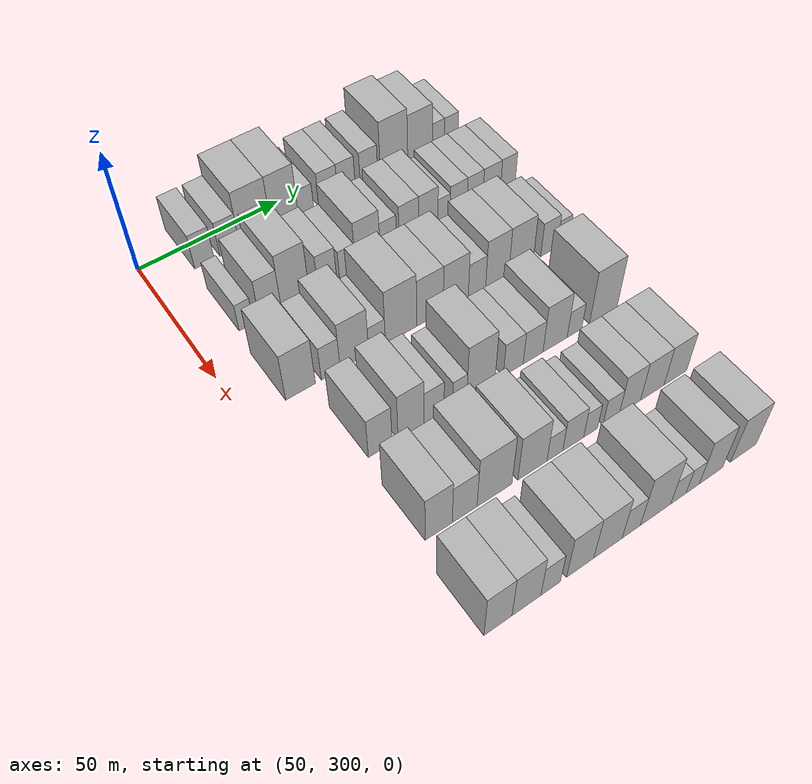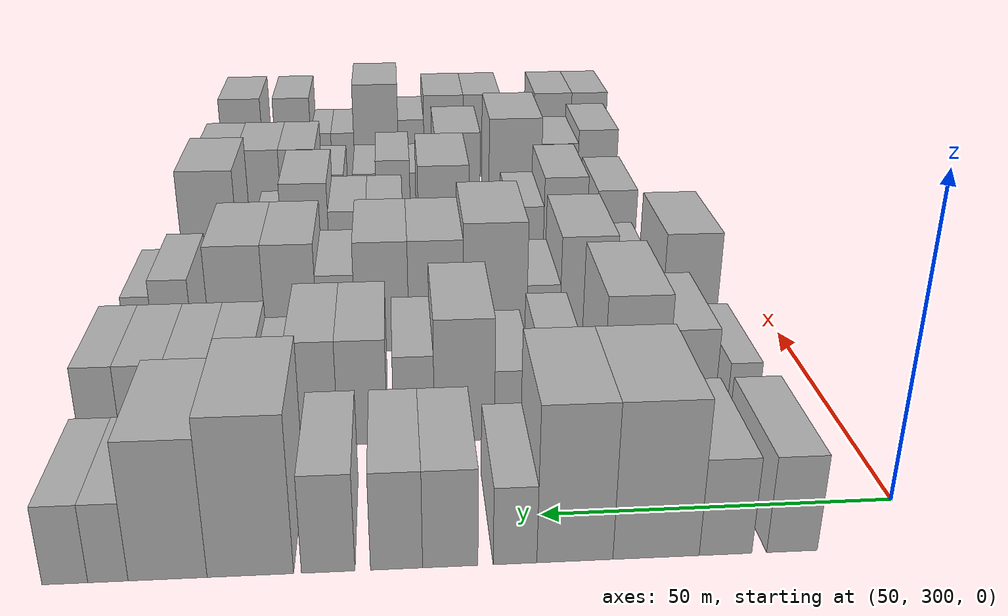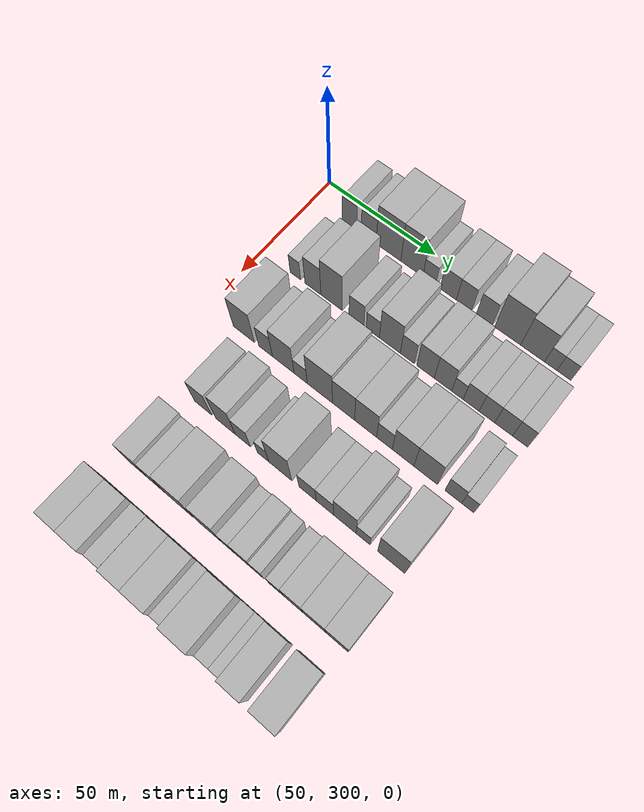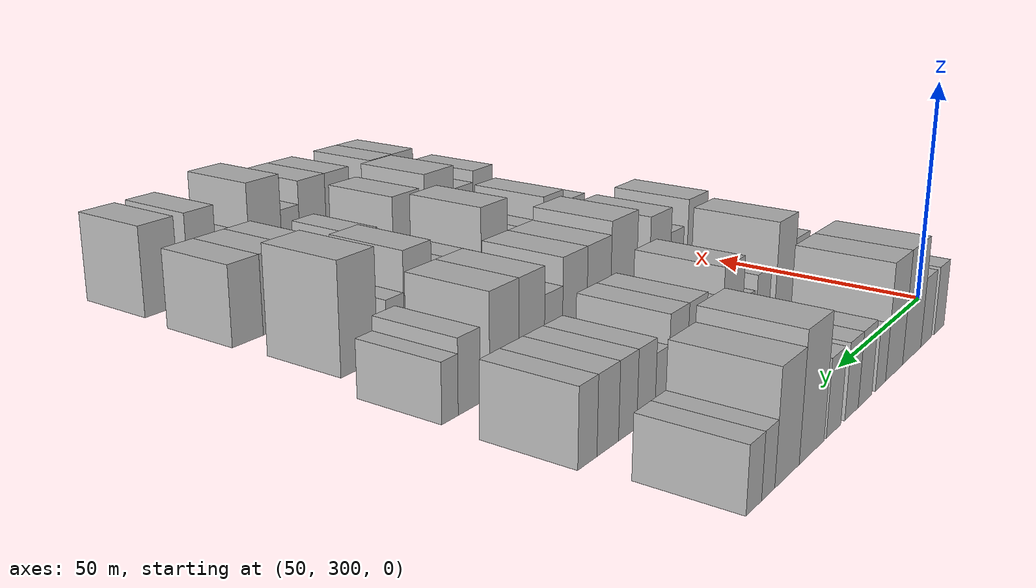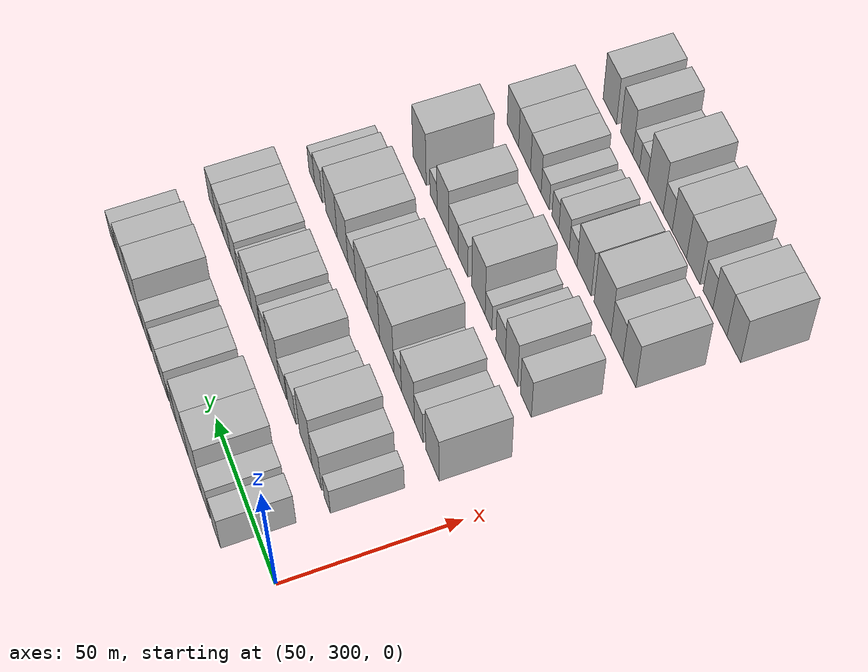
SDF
<sdf version="1.6">
 <world name="default">
  <model name="building_94">
   <static>1</static>
   <pose>50.0000 317.7325 0 0.000000 0.000000 0.000000</pose>
   <link name="link">
    <pose>0 0 7.50 0 0 0</pose>
    <collision name="collision"><geometry><box><size>20.0000 6.8582 15.0000</size></box></geometry></collision>
    <visual name="visual">
     <cast_shadows>0</cast_shadows>
     <geometry><box><size>20.0000 6.8582 15.0000</size></box></geometry>
     <material>
      <script>
       <uri>model://HANNAS_wall/materials/scripts</uri>
       <uri>model://HANNAS_wall/materials/textures</uri>
       <name>vrc/HANNAS_wall</name>
      </script>
     </material>
    </visual>
   </link>
  </model>
  <model name="building_95">
   <static>1</static>
   <pose>50.0000 326.7030 0 0.000000 0.000000 0.000000</pose>
   <link name="link">
    <pose>0 0 7.50 0 0 0</pose>
    <collision name="collision"><geometry><box><size>20.0000 7.0827 15.0000</size></box></geometry></collision>
    <visual name="visual">
     <cast_shadows>0</cast_shadows>
     <geometry><box><size>20.0000 7.0827 15.0000</size></box></geometry>
     <material>
      <script>
       <uri>model://HANNAS_wall/materials/scripts</uri>
       <uri>model://HANNAS_wall/materials/textures</uri>
       <name>vrc/HANNAS_wall</name>
      </script>
     </material>
    </visual>
   </link>
  </model>
  <model name="building_96">
   <static>1</static>
   <pose>50.0000 336.0041 0 0.000000 0.000000 0.000000</pose>
   <link name="link">
    <pose>0 0 12.00 0 0 0</pose>
    <collision name="collision"><geometry><box><size>20.0000 11.5197 24.0000</size></box></geometry></collision>
    <visual name="visual">
     <cast_shadows>0</cast_shadows>
     <geometry><box><size>20.0000 11.5197 24.0000</size></box></geometry>
     <material>
      <script>
       <uri>model://HANNAS_wall/materials/scripts</uri>
       <uri>model://HANNAS_wall/materials/textures</uri>
       <name>vrc/HANNAS_wall</name>
      </script>
     </material>
    </visual>
   </link>
  </model>
  <model name="building_97">
   <static>1</static>
   <pose>50.0000 346.7947 0 0.000000 0.000000 0.000000</pose>
   <link name="link">
    <pose>0 0 12.00 0 0 0</pose>
    <collision name="collision"><geometry><box><size>20.0000 10.0614 24.0000</size></box></geometry></collision>
    <visual name="visual">
     <cast_shadows>0</cast_shadows>
     <geometry><box><size>20.0000 10.0614 24.0000</size></box></geometry>
     <material>
      <script>
       <uri>model://HANNAS_wall/materials/scripts</uri>
       <uri>model://HANNAS_wall/materials/textures</uri>
       <name>vrc/HANNAS_wall</name>
      </script>
     </material>
    </visual>
   </link>
  </model>
  <model name="building_98">
   <static>1</static>
   <pose>50.0000 354.6883 0 0.000000 0.000000 0.000000</pose>
   <link name="link">
    <pose>0 0 6.00 0 0 0</pose>
    <collision name="collision"><geometry><box><size>20.0000 5.7258 12.0000</size></box></geometry></collision>
    <visual name="visual">
     <cast_shadows>0</cast_shadows>
     <geometry><box><size>20.0000 5.7258 12.0000</size></box></geometry>
     <material>
      <script>
       <uri>model://HANNAS_wall/materials/scripts</uri>
       <uri>model://HANNAS_wall/materials/textures</uri>
       <name>vrc/HANNAS_wall</name>
      </script>
     </material>
    </visual>
   </link>
  </model>
  <model name="building_99">
   <static>1</static>
   <pose>50.0000 363.1642 0 0.000000 0.000000 0.000000</pose>
   <link name="link">
    <pose>0 0 7.50 0 0 0</pose>
    <collision name="collision"><geometry><box><size>20.0000 7.2261 15.0000</size></box></geometry></collision>
    <visual name="visual">
     <cast_shadows>0</cast_shadows>
     <geometry><box><size>20.0000 7.2261 15.0000</size></box></geometry>
     <material>
      <script>
       <uri>model://HANNAS_wall/materials/scripts</uri>
       <uri>model://HANNAS_wall/materials/textures</uri>
       <name>vrc/HANNAS_wall</name>
      </script>
     </material>
    </visual>
   </link>
  </model>
  <model name="building_100">
   <static>1</static>
   <pose>50.0000 370.1564 0 0.000000 0.000000 0.000000</pose>
   <link name="link">
    <pose>0 0 7.50 0 0 0</pose>
    <collision name="collision"><geometry><box><size>20.0000 6.7582 15.0000</size></box></geometry></collision>
    <visual name="visual">
     <cast_shadows>0</cast_shadows>
     <geometry><box><size>20.0000 6.7582 15.0000</size></box></geometry>
     <material>
      <script>
       <uri>model://HANNAS_wall/materials/scripts</uri>
       <uri>model://HANNAS_wall/materials/textures</uri>
       <name>vrc/HANNAS_wall</name>
      </script>
     </material>
    </visual>
   </link>
  </model>
  <model name="building_101">
   <static>1</static>
   <pose>50.0000 378.9886 0 0.000000 0.000000 0.000000</pose>
   <link name="link">
    <pose>0 0 7.50 0 0 0</pose>
    <collision name="collision"><geometry><box><size>20.0000 6.9061 15.0000</size></box></geometry></collision>
    <visual name="visual">
     <cast_shadows>0</cast_shadows>
     <geometry><box><size>20.0000 6.9061 15.0000</size></box></geometry>
     <material>
      <script>
       <uri>model://HANNAS_wall/materials/scripts</uri>
       <uri>model://HANNAS_wall/materials/textures</uri>
       <name>vrc/HANNAS_wall</name>
      </script>
     </material>
    </visual>
   </link>
  </model>
  <model name="building_102">
   <static>1</static>
   <pose>50.0000 388.9622 0 0.000000 0.000000 0.000000</pose>
   <link name="link">
    <pose>0 0 12.00 0 0 0</pose>
    <collision name="collision"><geometry><box><size>20.0000 11.0410 24.0000</size></box></geometry></collision>
    <visual name="visual">
     <cast_shadows>0</cast_shadows>
     <geometry><box><size>20.0000 11.0410 24.0000</size></box></geometry>
     <material>
      <script>
       <uri>model://HANNAS_wall/materials/scripts</uri>
       <uri>model://HANNAS_wall/materials/textures</uri>
       <name>vrc/HANNAS_wall</name>
      </script>
     </material>
    </visual>
   </link>
  </model>
  <model name="building_103">
   <static>1</static>
   <pose>50.0000 399.4861 0 0.000000 0.000000 0.000000</pose>
   <link name="link">
    <pose>0 0 10.50 0 0 0</pose>
    <collision name="collision"><geometry><box><size>20.0000 10.0069 21.0000</size></box></geometry></collision>
    <visual name="visual">
     <cast_shadows>0</cast_shadows>
     <geometry><box><size>20.0000 10.0069 21.0000</size></box></geometry>
     <material>
      <script>
       <uri>model://HANNAS_wall/materials/scripts</uri>
       <uri>model://HANNAS_wall/materials/textures</uri>
       <name>vrc/HANNAS_wall</name>
      </script>
     </material>
    </visual>
   </link>
  </model>
  <model name="building_104">
   <static>1</static>
   <pose>50.0000 407.0296 0 0.000000 0.000000 0.000000</pose>
   <link name="link">
    <pose>0 0 6.00 0 0 0</pose>
    <collision name="collision"><geometry><box><size>20.0000 5.0802 12.0000</size></box></geometry></collision>
    <visual name="visual">
     <cast_shadows>0</cast_shadows>
     <geometry><box><size>20.0000 5.0802 12.0000</size></box></geometry>
     <material>
      <script>
       <uri>model://HANNAS_wall/materials/scripts</uri>
       <uri>model://HANNAS_wall/materials/textures</uri>
       <name>vrc/HANNAS_wall</name>
      </script>
     </material>
    </visual>
   </link>
  </model>
  <model name="building_105">
   <static>1</static>
   <pose>50.0000 412.4384 0 0.000000 0.000000 0.000000</pose>
   <link name="link">
    <pose>0 0 6.00 0 0 0</pose>
    <collision name="collision"><geometry><box><size>20.0000 5.7373 12.0000</size></box></geometry></collision>
    <visual name="visual">
     <cast_shadows>0</cast_shadows>
     <geometry><box><size>20.0000 5.7373 12.0000</size></box></geometry>
     <material>
      <script>
       <uri>model://HANNAS_wall/materials/scripts</uri>
       <uri>model://HANNAS_wall/materials/textures</uri>
       <name>vrc/HANNAS_wall</name>
      </script>
     </material>
    </visual>
   </link>
  </model>
  <model name="building_204">
   <static>1</static>
   <pose>79.0000 316.2147 0 0.000000 0.000000 0.000000</pose>
   <link name="link">
    <pose>0 0 6.00 0 0 0</pose>
    <collision name="collision"><geometry><box><size>20.0000 4.9448 12.0000</size></box></geometry></collision>
    <visual name="visual">
     <cast_shadows>0</cast_shadows>
     <geometry><box><size>20.0000 4.9448 12.0000</size></box></geometry>
     <material>
      <script>
       <uri>model://HANNAS_wall/materials/scripts</uri>
       <uri>model://HANNAS_wall/materials/textures</uri>
       <name>vrc/HANNAS_wall</name>
      </script>
     </material>
    </visual>
   </link>
  </model>
  <model name="building_205">
   <static>1</static>
   <pose>79.0000 324.4566 0 0.000000 0.000000 0.000000</pose>
   <link name="link">
    <pose>0 0 9.00 0 0 0</pose>
    <collision name="collision"><geometry><box><size>20.0000 7.5390 18.0000</size></box></geometry></collision>
    <visual name="visual">
     <cast_shadows>0</cast_shadows>
     <geometry><box><size>20.0000 7.5390 18.0000</size></box></geometry>
     <material>
      <script>
       <uri>model://HANNAS_wall/materials/scripts</uri>
       <uri>model://HANNAS_wall/materials/textures</uri>
       <name>vrc/HANNAS_wall</name>
      </script>
     </material>
    </visual>
   </link>
  </model>
  <model name="building_206">
   <static>1</static>
   <pose>79.0000 333.1781 0 0.000000 0.000000 0.000000</pose>
   <link name="link">
    <pose>0 0 12.00 0 0 0</pose>
    <collision name="collision"><geometry><box><size>20.0000 9.9040 24.0000</size></box></geometry></collision>
    <visual name="visual">
     <cast_shadows>0</cast_shadows>
     <geometry><box><size>20.0000 9.9040 24.0000</size></box></geometry>
     <material>
      <script>
       <uri>model://HANNAS_wall/materials/scripts</uri>
       <uri>model://HANNAS_wall/materials/textures</uri>
       <name>vrc/HANNAS_wall</name>
      </script>
     </material>
    </visual>
   </link>
  </model>
  <model name="building_207">
   <static>1</static>
   <pose>79.0000 344.5242 0 0.000000 0.000000 0.000000</pose>
   <link name="link">
    <pose>0 0 7.50 0 0 0</pose>
    <collision name="collision"><geometry><box><size>20.0000 6.7881 15.0000</size></box></geometry></collision>
    <visual name="visual">
     <cast_shadows>0</cast_shadows>
     <geometry><box><size>20.0000 6.7881 15.0000</size></box></geometry>
     <material>
      <script>
       <uri>model://HANNAS_wall/materials/scripts</uri>
       <uri>model://HANNAS_wall/materials/textures</uri>
       <name>vrc/HANNAS_wall</name>
      </script>
     </material>
    </visual>
   </link>
  </model>
  <model name="building_208">
   <static>1</static>
   <pose>79.0000 351.8543 0 0.000000 0.000000 0.000000</pose>
   <link name="link">
    <pose>0 0 6.00 0 0 0</pose>
    <collision name="collision"><geometry><box><size>20.0000 5.8721 12.0000</size></box></geometry></collision>
    <visual name="visual">
     <cast_shadows>0</cast_shadows>
     <geometry><box><size>20.0000 5.8721 12.0000</size></box></geometry>
     <material>
      <script>
       <uri>model://HANNAS_wall/materials/scripts</uri>
       <uri>model://HANNAS_wall/materials/textures</uri>
       <name>vrc/HANNAS_wall</name>
      </script>
     </material>
    </visual>
   </link>
  </model>
  <model name="building_209">
   <static>1</static>
   <pose>79.0000 359.4162 0 0.000000 0.000000 0.000000</pose>
   <link name="link">
    <pose>0 0 10.50 0 0 0</pose>
    <collision name="collision"><geometry><box><size>20.0000 9.2517 21.0000</size></box></geometry></collision>
    <visual name="visual">
     <cast_shadows>0</cast_shadows>
     <geometry><box><size>20.0000 9.2517 21.0000</size></box></geometry>
     <material>
      <script>
       <uri>model://HANNAS_wall/materials/scripts</uri>
       <uri>model://HANNAS_wall/materials/textures</uri>
       <name>vrc/HANNAS_wall</name>
      </script>
     </material>
    </visual>
   </link>
  </model>
  <model name="building_210">
   <static>1</static>
   <pose>79.0000 367.1193 0 0.000000 0.000000 0.000000</pose>
   <link name="link">
    <pose>0 0 7.50 0 0 0</pose>
    <collision name="collision"><geometry><box><size>20.0000 6.1545 15.0000</size></box></geometry></collision>
    <visual name="visual">
     <cast_shadows>0</cast_shadows>
     <geometry><box><size>20.0000 6.1545 15.0000</size></box></geometry>
     <material>
      <script>
       <uri>model://HANNAS_wall/materials/scripts</uri>
       <uri>model://HANNAS_wall/materials/textures</uri>
       <name>vrc/HANNAS_wall</name>
      </script>
     </material>
    </visual>
   </link>
  </model>
  <model name="building_211">
   <static>1</static>
   <pose>79.0000 374.9611 0 0.000000 0.000000 0.000000</pose>
   <link name="link">
    <pose>0 0 9.00 0 0 0</pose>
    <collision name="collision"><geometry><box><size>20.0000 7.5292 18.0000</size></box></geometry></collision>
    <visual name="visual">
     <cast_shadows>0</cast_shadows>
     <geometry><box><size>20.0000 7.5292 18.0000</size></box></geometry>
     <material>
      <script>
       <uri>model://HANNAS_wall/materials/scripts</uri>
       <uri>model://HANNAS_wall/materials/textures</uri>
       <name>vrc/HANNAS_wall</name>
      </script>
     </material>
    </visual>
   </link>
  </model>
  <model name="building_212">
   <static>1</static>
   <pose>79.0000 382.4216 0 0.000000 0.000000 0.000000</pose>
   <link name="link">
    <pose>0 0 9.00 0 0 0</pose>
    <collision name="collision"><geometry><box><size>20.0000 7.3918 18.0000</size></box></geometry></collision>
    <visual name="visual">
     <cast_shadows>0</cast_shadows>
     <geometry><box><size>20.0000 7.3918 18.0000</size></box></geometry>
     <material>
      <script>
       <uri>model://HANNAS_wall/materials/scripts</uri>
       <uri>model://HANNAS_wall/materials/textures</uri>
       <name>vrc/HANNAS_wall</name>
      </script>
     </material>
    </visual>
   </link>
  </model>
  <model name="building_213">
   <static>1</static>
   <pose>79.0000 388.5293 0 0.000000 0.000000 0.000000</pose>
   <link name="link">
    <pose>0 0 6.00 0 0 0</pose>
    <collision name="collision"><geometry><box><size>20.0000 4.8237 12.0000</size></box></geometry></collision>
    <visual name="visual">
     <cast_shadows>0</cast_shadows>
     <geometry><box><size>20.0000 4.8237 12.0000</size></box></geometry>
     <material>
      <script>
       <uri>model://HANNAS_wall/materials/scripts</uri>
       <uri>model://HANNAS_wall/materials/textures</uri>
       <name>vrc/HANNAS_wall</name>
      </script>
     </material>
    </visual>
   </link>
  </model>
  <model name="building_214">
   <static>1</static>
   <pose>79.0000 394.2707 0 0.000000 0.000000 0.000000</pose>
   <link name="link">
    <pose>0 0 7.50 0 0 0</pose>
    <collision name="collision"><geometry><box><size>20.0000 6.6591 15.0000</size></box></geometry></collision>
    <visual name="visual">
     <cast_shadows>0</cast_shadows>
     <geometry><box><size>20.0000 6.6591 15.0000</size></box></geometry>
     <material>
      <script>
       <uri>model://HANNAS_wall/materials/scripts</uri>
       <uri>model://HANNAS_wall/materials/textures</uri>
       <name>vrc/HANNAS_wall</name>
      </script>
     </material>
    </visual>
   </link>
  </model>
  <model name="building_215">
   <static>1</static>
   <pose>79.0000 400.8053 0 0.000000 0.000000 0.000000</pose>
   <link name="link">
    <pose>0 0 7.50 0 0 0</pose>
    <collision name="collision"><geometry><box><size>20.0000 6.4101 15.0000</size></box></geometry></collision>
    <visual name="visual">
     <cast_shadows>0</cast_shadows>
     <geometry><box><size>20.0000 6.4101 15.0000</size></box></geometry>
     <material>
      <script>
       <uri>model://HANNAS_wall/materials/scripts</uri>
       <uri>model://HANNAS_wall/materials/textures</uri>
       <name>vrc/HANNAS_wall</name>
      </script>
     </material>
    </visual>
   </link>
  </model>
  <model name="building_216">
   <static>1</static>
   <pose>79.0000 407.6153 0 0.000000 0.000000 0.000000</pose>
   <link name="link">
    <pose>0 0 7.50 0 0 0</pose>
    <collision name="collision"><geometry><box><size>20.0000 7.2100 15.0000</size></box></geometry></collision>
    <visual name="visual">
     <cast_shadows>0</cast_shadows>
     <geometry><box><size>20.0000 7.2100 15.0000</size></box></geometry>
     <material>
      <script>
       <uri>model://HANNAS_wall/materials/scripts</uri>
       <uri>model://HANNAS_wall/materials/textures</uri>
       <name>vrc/HANNAS_wall</name>
      </script>
     </material>
    </visual>
   </link>
  </model>
  <model name="building_217">
   <static>1</static>
   <pose>79.0000 414.2735 0 0.000000 0.000000 0.000000</pose>
   <link name="link">
    <pose>0 0 7.50 0 0 0</pose>
    <collision name="collision"><geometry><box><size>20.0000 6.1064 15.0000</size></box></geometry></collision>
    <visual name="visual">
     <cast_shadows>0</cast_shadows>
     <geometry><box><size>20.0000 6.1064 15.0000</size></box></geometry>
     <material>
      <script>
       <uri>model://HANNAS_wall/materials/scripts</uri>
       <uri>model://HANNAS_wall/materials/textures</uri>
       <name>vrc/HANNAS_wall</name>
      </script>
     </material>
    </visual>
   </link>
  </model>
  <model name="building_324">
   <static>1</static>
   <pose>108.0000 317.4230 0 0.000000 0.000000 0.000000</pose>
   <link name="link">
    <pose>0 0 10.50 0 0 0</pose>
    <collision name="collision"><geometry><box><size>20.0000 9.8982 21.0000</size></box></geometry></collision>
    <visual name="visual">
     <cast_shadows>0</cast_shadows>
     <geometry><box><size>20.0000 9.8982 21.0000</size></box></geometry>
     <material>
      <script>
       <uri>model://HANNAS_wall/materials/scripts</uri>
       <uri>model://HANNAS_wall/materials/textures</uri>
       <name>vrc/HANNAS_wall</name>
      </script>
     </material>
    </visual>
   </link>
  </model>
  <model name="building_325">
   <static>1</static>
   <pose>108.0000 327.5571 0 0.000000 0.000000 0.000000</pose>
   <link name="link">
    <pose>0 0 7.50 0 0 0</pose>
    <collision name="collision"><geometry><box><size>20.0000 6.3698 15.0000</size></box></geometry></collision>
    <visual name="visual">
     <cast_shadows>0</cast_shadows>
     <geometry><box><size>20.0000 6.3698 15.0000</size></box></geometry>
     <material>
      <script>
       <uri>model://HANNAS_wall/materials/scripts</uri>
       <uri>model://HANNAS_wall/materials/textures</uri>
       <name>vrc/HANNAS_wall</name>
      </script>
     </material>
    </visual>
   </link>
  </model>
  <model name="building_326">
   <static>1</static>
   <pose>108.0000 335.6737 0 0.000000 0.000000 0.000000</pose>
   <link name="link">
    <pose>0 0 10.50 0 0 0</pose>
    <collision name="collision"><geometry><box><size>20.0000 9.8633 21.0000</size></box></geometry></collision>
    <visual name="visual">
     <cast_shadows>0</cast_shadows>
     <geometry><box><size>20.0000 9.8633 21.0000</size></box></geometry>
     <material>
      <script>
       <uri>model://HANNAS_wall/materials/scripts</uri>
       <uri>model://HANNAS_wall/materials/textures</uri>
       <name>vrc/HANNAS_wall</name>
      </script>
     </material>
    </visual>
   </link>
  </model>
  <model name="building_327">
   <static>1</static>
   <pose>108.0000 343.5466 0 0.000000 0.000000 0.000000</pose>
   <link name="link">
    <pose>0 0 6.00 0 0 0</pose>
    <collision name="collision"><geometry><box><size>20.0000 5.8824 12.0000</size></box></geometry></collision>
    <visual name="visual">
     <cast_shadows>0</cast_shadows>
     <geometry><box><size>20.0000 5.8824 12.0000</size></box></geometry>
     <material>
      <script>
       <uri>model://HANNAS_wall/materials/scripts</uri>
       <uri>model://HANNAS_wall/materials/textures</uri>
       <name>vrc/HANNAS_wall</name>
      </script>
     </material>
    </visual>
   </link>
  </model>
  <model name="building_328">
   <static>1</static>
   <pose>108.0000 352.0879 0 0.000000 0.000000 0.000000</pose>
   <link name="link">
    <pose>0 0 12.00 0 0 0</pose>
    <collision name="collision"><geometry><box><size>20.0000 11.2002 24.0000</size></box></geometry></collision>
    <visual name="visual">
     <cast_shadows>0</cast_shadows>
     <geometry><box><size>20.0000 11.2002 24.0000</size></box></geometry>
     <material>
      <script>
       <uri>model://HANNAS_wall/materials/scripts</uri>
       <uri>model://HANNAS_wall/materials/textures</uri>
       <name>vrc/HANNAS_wall</name>
      </script>
     </material>
    </visual>
   </link>
  </model>
  <model name="building_329">
   <static>1</static>
   <pose>108.0000 362.4910 0 0.000000 0.000000 0.000000</pose>
   <link name="link">
    <pose>0 0 10.50 0 0 0</pose>
    <collision name="collision"><geometry><box><size>20.0000 9.6060 21.0000</size></box></geometry></collision>
    <visual name="visual">
     <cast_shadows>0</cast_shadows>
     <geometry><box><size>20.0000 9.6060 21.0000</size></box></geometry>
     <material>
      <script>
       <uri>model://HANNAS_wall/materials/scripts</uri>
       <uri>model://HANNAS_wall/materials/textures</uri>
       <name>vrc/HANNAS_wall</name>
      </script>
     </material>
    </visual>
   </link>
  </model>
  <model name="building_330">
   <static>1</static>
   <pose>108.0000 371.9802 0 0.000000 0.000000 0.000000</pose>
   <link name="link">
    <pose>0 0 10.50 0 0 0</pose>
    <collision name="collision"><geometry><box><size>20.0000 9.3723 21.0000</size></box></geometry></collision>
    <visual name="visual">
     <cast_shadows>0</cast_shadows>
     <geometry><box><size>20.0000 9.3723 21.0000</size></box></geometry>
     <material>
      <script>
       <uri>model://HANNAS_wall/materials/scripts</uri>
       <uri>model://HANNAS_wall/materials/textures</uri>
       <name>vrc/HANNAS_wall</name>
      </script>
     </material>
    </visual>
   </link>
  </model>
  <model name="building_331">
   <static>1</static>
   <pose>108.0000 379.9646 0 0.000000 0.000000 0.000000</pose>
   <link name="link">
    <pose>0 0 7.50 0 0 0</pose>
    <collision name="collision"><geometry><box><size>20.0000 6.5965 15.0000</size></box></geometry></collision>
    <visual name="visual">
     <cast_shadows>0</cast_shadows>
     <geometry><box><size>20.0000 6.5965 15.0000</size></box></geometry>
     <material>
      <script>
       <uri>model://HANNAS_wall/materials/scripts</uri>
       <uri>model://HANNAS_wall/materials/textures</uri>
       <name>vrc/HANNAS_wall</name>
      </script>
     </material>
    </visual>
   </link>
  </model>
  <model name="building_332">
   <static>1</static>
   <pose>108.0000 387.7366 0 0.000000 0.000000 0.000000</pose>
   <link name="link">
    <pose>0 0 10.50 0 0 0</pose>
    <collision name="collision"><geometry><box><size>20.0000 8.9475 21.0000</size></box></geometry></collision>
    <visual name="visual">
     <cast_shadows>0</cast_shadows>
     <geometry><box><size>20.0000 8.9475 21.0000</size></box></geometry>
     <material>
      <script>
       <uri>model://HANNAS_wall/materials/scripts</uri>
       <uri>model://HANNAS_wall/materials/textures</uri>
       <name>vrc/HANNAS_wall</name>
      </script>
     </material>
    </visual>
   </link>
  </model>
  <model name="building_333">
   <static>1</static>
   <pose>108.0000 397.0273 0 0.000000 0.000000 0.000000</pose>
   <link name="link">
    <pose>0 0 10.50 0 0 0</pose>
    <collision name="collision"><geometry><box><size>20.0000 9.6339 21.0000</size></box></geometry></collision>
    <visual name="visual">
     <cast_shadows>0</cast_shadows>
     <geometry><box><size>20.0000 9.6339 21.0000</size></box></geometry>
     <material>
      <script>
       <uri>model://HANNAS_wall/materials/scripts</uri>
       <uri>model://HANNAS_wall/materials/textures</uri>
       <name>vrc/HANNAS_wall</name>
      </script>
     </material>
    </visual>
   </link>
  </model>
  <model name="building_334">
   <static>1</static>
   <pose>108.0000 408.1901 0 0.000000 0.000000 0.000000</pose>
   <link name="link">
    <pose>0 0 7.50 0 0 0</pose>
    <collision name="collision"><geometry><box><size>20.0000 6.6919 15.0000</size></box></geometry></collision>
    <visual name="visual">
     <cast_shadows>0</cast_shadows>
     <geometry><box><size>20.0000 6.6919 15.0000</size></box></geometry>
     <material>
      <script>
       <uri>model://HANNAS_wall/materials/scripts</uri>
       <uri>model://HANNAS_wall/materials/textures</uri>
       <name>vrc/HANNAS_wall</name>
      </script>
     </material>
    </visual>
   </link>
  </model>
  <model name="building_335">
   <static>1</static>
   <pose>108.0000 413.9583 0 0.000000 0.000000 0.000000</pose>
   <link name="link">
    <pose>0 0 6.00 0 0 0</pose>
    <collision name="collision"><geometry><box><size>20.0000 4.8446 12.0000</size></box></geometry></collision>
    <visual name="visual">
     <cast_shadows>0</cast_shadows>
     <geometry><box><size>20.0000 4.8446 12.0000</size></box></geometry>
     <material>
      <script>
       <uri>model://HANNAS_wall/materials/scripts</uri>
       <uri>model://HANNAS_wall/materials/textures</uri>
       <name>vrc/HANNAS_wall</name>
      </script>
     </material>
    </visual>
   </link>
  </model>
  <model name="building_441">
   <static>1</static>
   <pose>137.0000 325.2524 0 0.000000 0.000000 0.000000</pose>
   <link name="link">
    <pose>0 0 9.00 0 0 0</pose>
    <collision name="collision"><geometry><box><size>20.0000 7.8008 18.0000</size></box></geometry></collision>
    <visual name="visual">
     <cast_shadows>0</cast_shadows>
     <geometry><box><size>20.0000 7.8008 18.0000</size></box></geometry>
     <material>
      <script>
       <uri>model://HANNAS_wall/materials/scripts</uri>
       <uri>model://HANNAS_wall/materials/textures</uri>
       <name>vrc/HANNAS_wall</name>
      </script>
     </material>
    </visual>
   </link>
  </model>
  <model name="building_442">
   <static>1</static>
   <pose>137.0000 335.4854 0 0.000000 0.000000 0.000000</pose>
   <link name="link">
    <pose>0 0 10.50 0 0 0</pose>
    <collision name="collision"><geometry><box><size>20.0000 8.6653 21.0000</size></box></geometry></collision>
    <visual name="visual">
     <cast_shadows>0</cast_shadows>
     <geometry><box><size>20.0000 8.6653 21.0000</size></box></geometry>
     <material>
      <script>
       <uri>model://HANNAS_wall/materials/scripts</uri>
       <uri>model://HANNAS_wall/materials/textures</uri>
       <name>vrc/HANNAS_wall</name>
      </script>
     </material>
    </visual>
   </link>
  </model>
  <model name="building_443">
   <static>1</static>
   <pose>137.0000 343.2333 0 0.000000 0.000000 0.000000</pose>
   <link name="link">
    <pose>0 0 7.50 0 0 0</pose>
    <collision name="collision"><geometry><box><size>20.0000 6.8306 15.0000</size></box></geometry></collision>
    <visual name="visual">
     <cast_shadows>0</cast_shadows>
     <geometry><box><size>20.0000 6.8306 15.0000</size></box></geometry>
     <material>
      <script>
       <uri>model://HANNAS_wall/materials/scripts</uri>
       <uri>model://HANNAS_wall/materials/textures</uri>
       <name>vrc/HANNAS_wall</name>
      </script>
     </material>
    </visual>
   </link>
  </model>
  <model name="building_444">
   <static>1</static>
   <pose>137.0000 352.1527 0 0.000000 0.000000 0.000000</pose>
   <link name="link">
    <pose>0 0 6.00 0 0 0</pose>
    <collision name="collision"><geometry><box><size>20.0000 5.0082 12.0000</size></box></geometry></collision>
    <visual name="visual">
     <cast_shadows>0</cast_shadows>
     <geometry><box><size>20.0000 5.0082 12.0000</size></box></geometry>
     <material>
      <script>
       <uri>model://HANNAS_wall/materials/scripts</uri>
       <uri>model://HANNAS_wall/materials/textures</uri>
       <name>vrc/HANNAS_wall</name>
      </script>
     </material>
    </visual>
   </link>
  </model>
  <model name="building_445">
   <static>1</static>
   <pose>137.0000 359.6708 0 0.000000 0.000000 0.000000</pose>
   <link name="link">
    <pose>0 0 12.00 0 0 0</pose>
    <collision name="collision"><geometry><box><size>20.0000 10.0281 24.0000</size></box></geometry></collision>
    <visual name="visual">
     <cast_shadows>0</cast_shadows>
     <geometry><box><size>20.0000 10.0281 24.0000</size></box></geometry>
     <material>
      <script>
       <uri>model://HANNAS_wall/materials/scripts</uri>
       <uri>model://HANNAS_wall/materials/textures</uri>
       <name>vrc/HANNAS_wall</name>
      </script>
     </material>
    </visual>
   </link>
  </model>
  <model name="building_446">
   <static>1</static>
   <pose>137.0000 371.3090 0 0.000000 0.000000 0.000000</pose>
   <link name="link">
    <pose>0 0 7.50 0 0 0</pose>
    <collision name="collision"><geometry><box><size>20.0000 7.2482 15.0000</size></box></geometry></collision>
    <visual name="visual">
     <cast_shadows>0</cast_shadows>
     <geometry><box><size>20.0000 7.2482 15.0000</size></box></geometry>
     <material>
      <script>
       <uri>model://HANNAS_wall/materials/scripts</uri>
       <uri>model://HANNAS_wall/materials/textures</uri>
       <name>vrc/HANNAS_wall</name>
      </script>
     </material>
    </visual>
   </link>
  </model>
  <model name="building_447">
   <static>1</static>
   <pose>137.0000 378.6129 0 0.000000 0.000000 0.000000</pose>
   <link name="link">
    <pose>0 0 7.50 0 0 0</pose>
    <collision name="collision"><geometry><box><size>20.0000 7.3597 15.0000</size></box></geometry></collision>
    <visual name="visual">
     <cast_shadows>0</cast_shadows>
     <geometry><box><size>20.0000 7.3597 15.0000</size></box></geometry>
     <material>
      <script>
       <uri>model://HANNAS_wall/materials/scripts</uri>
       <uri>model://HANNAS_wall/materials/textures</uri>
       <name>vrc/HANNAS_wall</name>
      </script>
     </material>
    </visual>
   </link>
  </model>
  <model name="building_448">
   <static>1</static>
   <pose>137.0000 386.8823 0 0.000000 0.000000 0.000000</pose>
   <link name="link">
    <pose>0 0 10.50 0 0 0</pose>
    <collision name="collision"><geometry><box><size>20.0000 9.1791 21.0000</size></box></geometry></collision>
    <visual name="visual">
     <cast_shadows>0</cast_shadows>
     <geometry><box><size>20.0000 9.1791 21.0000</size></box></geometry>
     <material>
      <script>
       <uri>model://HANNAS_wall/materials/scripts</uri>
       <uri>model://HANNAS_wall/materials/textures</uri>
       <name>vrc/HANNAS_wall</name>
      </script>
     </material>
    </visual>
   </link>
  </model>
  <model name="building_449">
   <static>1</static>
   <pose>137.0000 394.2771 0 0.000000 0.000000 0.000000</pose>
   <link name="link">
    <pose>0 0 6.00 0 0 0</pose>
    <collision name="collision"><geometry><box><size>20.0000 5.6105 12.0000</size></box></geometry></collision>
    <visual name="visual">
     <cast_shadows>0</cast_shadows>
     <geometry><box><size>20.0000 5.6105 12.0000</size></box></geometry>
     <material>
      <script>
       <uri>model://HANNAS_wall/materials/scripts</uri>
       <uri>model://HANNAS_wall/materials/textures</uri>
       <name>vrc/HANNAS_wall</name>
      </script>
     </material>
    </visual>
   </link>
  </model>
  <model name="building_450">
   <static>1</static>
   <pose>137.0000 405.4904 0 0.000000 0.000000 0.000000</pose>
   <link name="link">
    <pose>0 0 12.00 0 0 0</pose>
    <collision name="collision"><geometry><box><size>20.0000 10.8160 24.0000</size></box></geometry></collision>
    <visual name="visual">
     <cast_shadows>0</cast_shadows>
     <geometry><box><size>20.0000 10.8160 24.0000</size></box></geometry>
     <material>
      <script>
       <uri>model://HANNAS_wall/materials/scripts</uri>
       <uri>model://HANNAS_wall/materials/textures</uri>
       <name>vrc/HANNAS_wall</name>
      </script>
     </material>
    </visual>
   </link>
  </model>
  <model name="building_563">
   <static>1</static>
   <pose>166.0000 324.1325 0 0.000000 0.000000 0.000000</pose>
   <link name="link">
    <pose>0 0 10.50 0 0 0</pose>
    <collision name="collision"><geometry><box><size>20.0000 8.6707 21.0000</size></box></geometry></collision>
    <visual name="visual">
     <cast_shadows>0</cast_shadows>
     <geometry><box><size>20.0000 8.6707 21.0000</size></box></geometry>
     <material>
      <script>
       <uri>model://HANNAS_wall/materials/scripts</uri>
       <uri>model://HANNAS_wall/materials/textures</uri>
       <name>vrc/HANNAS_wall</name>
      </script>
     </material>
    </visual>
   </link>
  </model>
  <model name="building_564">
   <static>1</static>
   <pose>166.0000 332.5173 0 0.000000 0.000000 0.000000</pose>
   <link name="link">
    <pose>0 0 9.00 0 0 0</pose>
    <collision name="collision"><geometry><box><size>20.0000 8.0990 18.0000</size></box></geometry></collision>
    <visual name="visual">
     <cast_shadows>0</cast_shadows>
     <geometry><box><size>20.0000 8.0990 18.0000</size></box></geometry>
     <material>
      <script>
       <uri>model://HANNAS_wall/materials/scripts</uri>
       <uri>model://HANNAS_wall/materials/textures</uri>
       <name>vrc/HANNAS_wall</name>
      </script>
     </material>
    </visual>
   </link>
  </model>
  <model name="building_565">
   <static>1</static>
   <pose>166.0000 342.3951 0 0.000000 0.000000 0.000000</pose>
   <link name="link">
    <pose>0 0 12.00 0 0 0</pose>
    <collision name="collision"><geometry><box><size>20.0000 11.6566 24.0000</size></box></geometry></collision>
    <visual name="visual">
     <cast_shadows>0</cast_shadows>
     <geometry><box><size>20.0000 11.6566 24.0000</size></box></geometry>
     <material>
      <script>
       <uri>model://HANNAS_wall/materials/scripts</uri>
       <uri>model://HANNAS_wall/materials/textures</uri>
       <name>vrc/HANNAS_wall</name>
      </script>
     </material>
    </visual>
   </link>
  </model>
  <model name="building_566">
   <static>1</static>
   <pose>166.0000 355.2236 0 0.000000 0.000000 0.000000</pose>
   <link name="link">
    <pose>0 0 10.50 0 0 0</pose>
    <collision name="collision"><geometry><box><size>20.0000 10.0004 21.0000</size></box></geometry></collision>
    <visual name="visual">
     <cast_shadows>0</cast_shadows>
     <geometry><box><size>20.0000 10.0004 21.0000</size></box></geometry>
     <material>
      <script>
       <uri>model://HANNAS_wall/materials/scripts</uri>
       <uri>model://HANNAS_wall/materials/textures</uri>
       <name>vrc/HANNAS_wall</name>
      </script>
     </material>
    </visual>
   </link>
  </model>
  <model name="building_567">
   <static>1</static>
   <pose>166.0000 363.0037 0 0.000000 0.000000 0.000000</pose>
   <link name="link">
    <pose>0 0 6.00 0 0 0</pose>
    <collision name="collision"><geometry><box><size>20.0000 5.5598 12.0000</size></box></geometry></collision>
    <visual name="visual">
     <cast_shadows>0</cast_shadows>
     <geometry><box><size>20.0000 5.5598 12.0000</size></box></geometry>
     <material>
      <script>
       <uri>model://HANNAS_wall/materials/scripts</uri>
       <uri>model://HANNAS_wall/materials/textures</uri>
       <name>vrc/HANNAS_wall</name>
      </script>
     </material>
    </visual>
   </link>
  </model>
  <model name="building_568">
   <static>1</static>
   <pose>166.0000 369.5215 0 0.000000 0.000000 0.000000</pose>
   <link name="link">
    <pose>0 0 7.50 0 0 0</pose>
    <collision name="collision"><geometry><box><size>20.0000 7.4758 15.0000</size></box></geometry></collision>
    <visual name="visual">
     <cast_shadows>0</cast_shadows>
     <geometry><box><size>20.0000 7.4758 15.0000</size></box></geometry>
     <material>
      <script>
       <uri>model://HANNAS_wall/materials/scripts</uri>
       <uri>model://HANNAS_wall/materials/textures</uri>
       <name>vrc/HANNAS_wall</name>
      </script>
     </material>
    </visual>
   </link>
  </model>
  <model name="building_569">
   <static>1</static>
   <pose>166.0000 375.7778 0 0.000000 0.000000 0.000000</pose>
   <link name="link">
    <pose>0 0 6.00 0 0 0</pose>
    <collision name="collision"><geometry><box><size>20.0000 5.0367 12.0000</size></box></geometry></collision>
    <visual name="visual">
     <cast_shadows>0</cast_shadows>
     <geometry><box><size>20.0000 5.0367 12.0000</size></box></geometry>
     <material>
      <script>
       <uri>model://HANNAS_wall/materials/scripts</uri>
       <uri>model://HANNAS_wall/materials/textures</uri>
       <name>vrc/HANNAS_wall</name>
      </script>
     </material>
    </visual>
   </link>
  </model>
  <model name="building_570">
   <static>1</static>
   <pose>166.0000 383.2883 0 0.000000 0.000000 0.000000</pose>
   <link name="link">
    <pose>0 0 6.00 0 0 0</pose>
    <collision name="collision"><geometry><box><size>20.0000 5.9843 12.0000</size></box></geometry></collision>
    <visual name="visual">
     <cast_shadows>0</cast_shadows>
     <geometry><box><size>20.0000 5.9843 12.0000</size></box></geometry>
     <material>
      <script>
       <uri>model://HANNAS_wall/materials/scripts</uri>
       <uri>model://HANNAS_wall/materials/textures</uri>
       <name>vrc/HANNAS_wall</name>
      </script>
     </material>
    </visual>
   </link>
  </model>
  <model name="building_571">
   <static>1</static>
   <pose>166.0000 390.2536 0 0.000000 0.000000 0.000000</pose>
   <link name="link">
    <pose>0 0 9.00 0 0 0</pose>
    <collision name="collision"><geometry><box><size>20.0000 7.9462 18.0000</size></box></geometry></collision>
    <visual name="visual">
     <cast_shadows>0</cast_shadows>
     <geometry><box><size>20.0000 7.9462 18.0000</size></box></geometry>
     <material>
      <script>
       <uri>model://HANNAS_wall/materials/scripts</uri>
       <uri>model://HANNAS_wall/materials/textures</uri>
       <name>vrc/HANNAS_wall</name>
      </script>
     </material>
    </visual>
   </link>
  </model>
  <model name="building_572">
   <static>1</static>
   <pose>166.0000 398.7045 0 0.000000 0.000000 0.000000</pose>
   <link name="link">
    <pose>0 0 9.00 0 0 0</pose>
    <collision name="collision"><geometry><box><size>20.0000 8.9557 18.0000</size></box></geometry></collision>
    <visual name="visual">
     <cast_shadows>0</cast_shadows>
     <geometry><box><size>20.0000 8.9557 18.0000</size></box></geometry>
     <material>
      <script>
       <uri>model://HANNAS_wall/materials/scripts</uri>
       <uri>model://HANNAS_wall/materials/textures</uri>
       <name>vrc/HANNAS_wall</name>
      </script>
     </material>
    </visual>
   </link>
  </model>
  <model name="building_573">
   <static>1</static>
   <pose>166.0000 407.5901 0 0.000000 0.000000 0.000000</pose>
   <link name="link">
    <pose>0 0 9.00 0 0 0</pose>
    <collision name="collision"><geometry><box><size>20.0000 8.8155 18.0000</size></box></geometry></collision>
    <visual name="visual">
     <cast_shadows>0</cast_shadows>
     <geometry><box><size>20.0000 8.8155 18.0000</size></box></geometry>
     <material>
      <script>
       <uri>model://HANNAS_wall/materials/scripts</uri>
       <uri>model://HANNAS_wall/materials/textures</uri>
       <name>vrc/HANNAS_wall</name>
      </script>
     </material>
    </visual>
   </link>
  </model>
  <model name="building_676">
   <static>1</static>
   <pose>195.0000 321.2861 0 0.000000 0.000000 0.000000</pose>
   <link name="link">
    <pose>0 0 10.50 0 0 0</pose>
    <collision name="collision"><geometry><box><size>20.0000 8.6737 21.0000</size></box></geometry></collision>
    <visual name="visual">
     <cast_shadows>0</cast_shadows>
     <geometry><box><size>20.0000 8.6737 21.0000</size></box></geometry>
     <material>
      <script>
       <uri>model://HANNAS_wall/materials/scripts</uri>
       <uri>model://HANNAS_wall/materials/textures</uri>
       <name>vrc/HANNAS_wall</name>
      </script>
     </material>
    </visual>
   </link>
  </model>
  <model name="building_677">
   <static>1</static>
   <pose>195.0000 330.1918 0 0.000000 0.000000 0.000000</pose>
   <link name="link">
    <pose>0 0 10.50 0 0 0</pose>
    <collision name="collision"><geometry><box><size>20.0000 9.1378 21.0000</size></box></geometry></collision>
    <visual name="visual">
     <cast_shadows>0</cast_shadows>
     <geometry><box><size>20.0000 9.1378 21.0000</size></box></geometry>
     <material>
      <script>
       <uri>model://HANNAS_wall/materials/scripts</uri>
       <uri>model://HANNAS_wall/materials/textures</uri>
       <name>vrc/HANNAS_wall</name>
      </script>
     </material>
    </visual>
   </link>
  </model>
  <model name="building_678">
   <static>1</static>
   <pose>195.0000 337.9252 0 0.000000 0.000000 0.000000</pose>
   <link name="link">
    <pose>0 0 7.50 0 0 0</pose>
    <collision name="collision"><geometry><box><size>20.0000 6.3289 15.0000</size></box></geometry></collision>
    <visual name="visual">
     <cast_shadows>0</cast_shadows>
     <geometry><box><size>20.0000 6.3289 15.0000</size></box></geometry>
     <material>
      <script>
       <uri>model://HANNAS_wall/materials/scripts</uri>
       <uri>model://HANNAS_wall/materials/textures</uri>
       <name>vrc/HANNAS_wall</name>
      </script>
     </material>
    </visual>
   </link>
  </model>
  <model name="building_679">
   <static>1</static>
   <pose>195.0000 347.5955 0 0.000000 0.000000 0.000000</pose>
   <link name="link">
    <pose>0 0 10.50 0 0 0</pose>
    <collision name="collision"><geometry><box><size>20.0000 9.0117 21.0000</size></box></geometry></collision>
    <visual name="visual">
     <cast_shadows>0</cast_shadows>
     <geometry><box><size>20.0000 9.0117 21.0000</size></box></geometry>
     <material>
      <script>
       <uri>model://HANNAS_wall/materials/scripts</uri>
       <uri>model://HANNAS_wall/materials/textures</uri>
       <name>vrc/HANNAS_wall</name>
      </script>
     </material>
    </visual>
   </link>
  </model>
  <model name="building_680">
   <static>1</static>
   <pose>195.0000 356.9088 0 0.000000 0.000000 0.000000</pose>
   <link name="link">
    <pose>0 0 10.50 0 0 0</pose>
    <collision name="collision"><geometry><box><size>20.0000 9.6150 21.0000</size></box></geometry></collision>
    <visual name="visual">
     <cast_shadows>0</cast_shadows>
     <geometry><box><size>20.0000 9.6150 21.0000</size></box></geometry>
     <material>
      <script>
       <uri>model://HANNAS_wall/materials/scripts</uri>
       <uri>model://HANNAS_wall/materials/textures</uri>
       <name>vrc/HANNAS_wall</name>
      </script>
     </material>
    </visual>
   </link>
  </model>
  <model name="building_681">
   <static>1</static>
   <pose>195.0000 364.8509 0 0.000000 0.000000 0.000000</pose>
   <link name="link">
    <pose>0 0 7.50 0 0 0</pose>
    <collision name="collision"><geometry><box><size>20.0000 6.2690 15.0000</size></box></geometry></collision>
    <visual name="visual">
     <cast_shadows>0</cast_shadows>
     <geometry><box><size>20.0000 6.2690 15.0000</size></box></geometry>
     <material>
      <script>
       <uri>model://HANNAS_wall/materials/scripts</uri>
       <uri>model://HANNAS_wall/materials/textures</uri>
       <name>vrc/HANNAS_wall</name>
      </script>
     </material>
    </visual>
   </link>
  </model>
  <model name="building_682">
   <static>1</static>
   <pose>195.0000 373.3689 0 0.000000 0.000000 0.000000</pose>
   <link name="link">
    <pose>0 0 12.00 0 0 0</pose>
    <collision name="collision"><geometry><box><size>20.0000 10.7670 24.0000</size></box></geometry></collision>
    <visual name="visual">
     <cast_shadows>0</cast_shadows>
     <geometry><box><size>20.0000 10.7670 24.0000</size></box></geometry>
     <material>
      <script>
       <uri>model://HANNAS_wall/materials/scripts</uri>
       <uri>model://HANNAS_wall/materials/textures</uri>
       <name>vrc/HANNAS_wall</name>
      </script>
     </material>
    </visual>
   </link>
  </model>
  <model name="building_683">
   <static>1</static>
   <pose>195.0000 381.5096 0 0.000000 0.000000 0.000000</pose>
   <link name="link">
    <pose>0 0 6.00 0 0 0</pose>
    <collision name="collision"><geometry><box><size>20.0000 5.5144 12.0000</size></box></geometry></collision>
    <visual name="visual">
     <cast_shadows>0</cast_shadows>
     <geometry><box><size>20.0000 5.5144 12.0000</size></box></geometry>
     <material>
      <script>
       <uri>model://HANNAS_wall/materials/scripts</uri>
       <uri>model://HANNAS_wall/materials/textures</uri>
       <name>vrc/HANNAS_wall</name>
      </script>
     </material>
    </visual>
   </link>
  </model>
  <model name="building_684">
   <static>1</static>
   <pose>195.0000 386.6834 0 0.000000 0.000000 0.000000</pose>
   <link name="link">
    <pose>0 0 6.00 0 0 0</pose>
    <collision name="collision"><geometry><box><size>20.0000 4.8332 12.0000</size></box></geometry></collision>
    <visual name="visual">
     <cast_shadows>0</cast_shadows>
     <geometry><box><size>20.0000 4.8332 12.0000</size></box></geometry>
     <material>
      <script>
       <uri>model://HANNAS_wall/materials/scripts</uri>
       <uri>model://HANNAS_wall/materials/textures</uri>
       <name>vrc/HANNAS_wall</name>
      </script>
     </material>
    </visual>
   </link>
  </model>
  <model name="building_685">
   <static>1</static>
   <pose>195.0000 393.4345 0 0.000000 0.000000 0.000000</pose>
   <link name="link">
    <pose>0 0 10.50 0 0 0</pose>
    <collision name="collision"><geometry><box><size>20.0000 8.6691 21.0000</size></box></geometry></collision>
    <visual name="visual">
     <cast_shadows>0</cast_shadows>
     <geometry><box><size>20.0000 8.6691 21.0000</size></box></geometry>
     <material>
      <script>
       <uri>model://HANNAS_wall/materials/scripts</uri>
       <uri>model://HANNAS_wall/materials/textures</uri>
       <name>vrc/HANNAS_wall</name>
      </script>
     </material>
    </visual>
   </link>
  </model>
  <model name="building_686">
   <static>1</static>
   <pose>195.0000 405.6661 0 0.000000 0.000000 0.000000</pose>
   <link name="link">
    <pose>0 0 10.50 0 0 0</pose>
    <collision name="collision"><geometry><box><size>20.0000 9.7941 21.0000</size></box></geometry></collision>
    <visual name="visual">
     <cast_shadows>0</cast_shadows>
     <geometry><box><size>20.0000 9.7941 21.0000</size></box></geometry>
     <material>
      <script>
       <uri>model://HANNAS_wall/materials/scripts</uri>
       <uri>model://HANNAS_wall/materials/textures</uri>
       <name>vrc/HANNAS_wall</name>
      </script>
     </material>
    </visual>
   </link>
  </model>
 </world>
</sdf>
